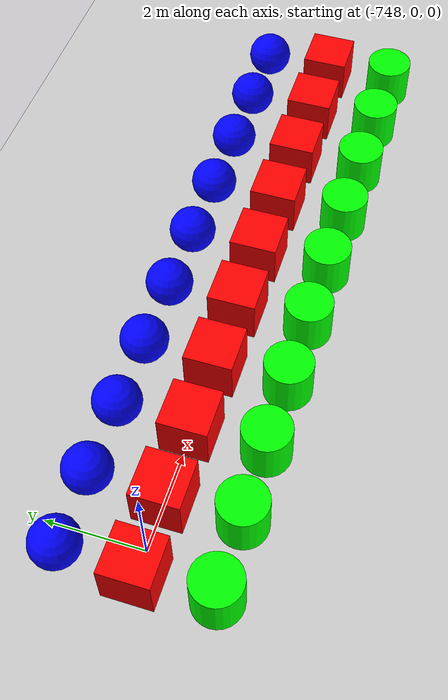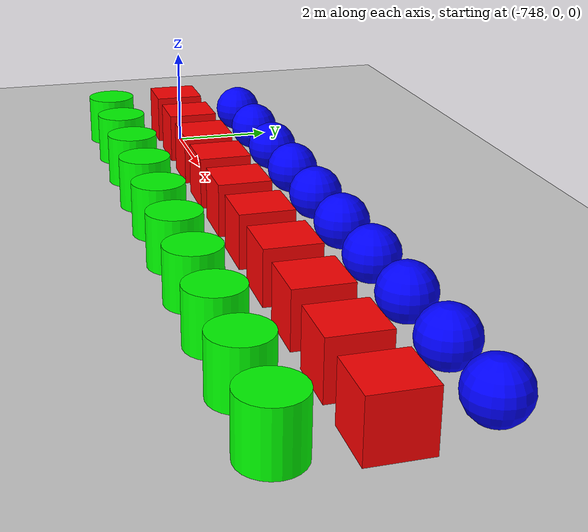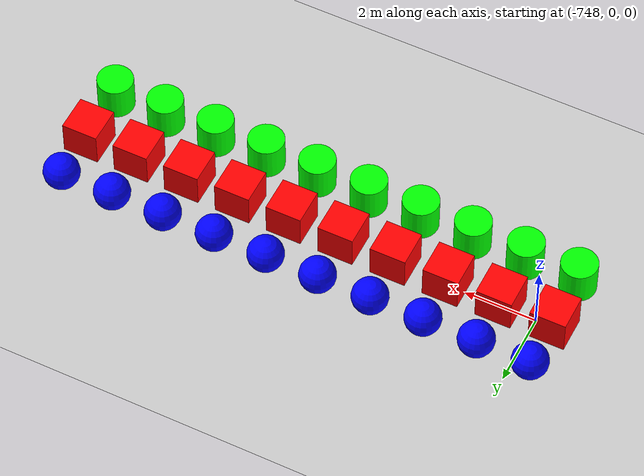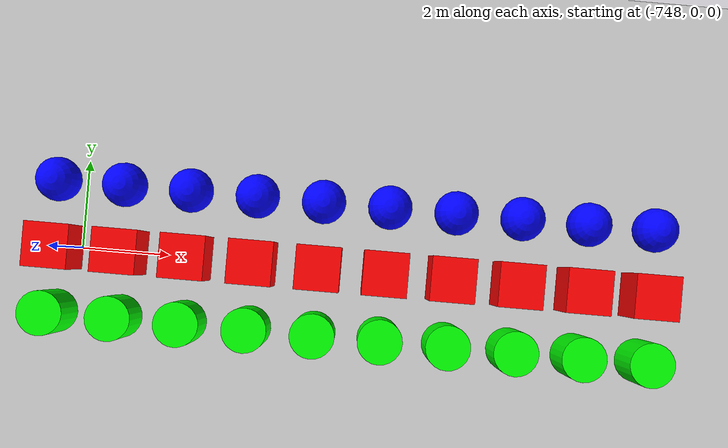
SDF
<?xml version="1.0" ?>
<sdf version="1.6">
  <world name="shapes">
    <model name="ground_plane">
      <static>true</static>
      <link name="link">
        <collision name="collision">
          <geometry>
            <plane>
              <normal>0 0 1</normal>
              <size>100 100</size>
            </plane>
          </geometry>
        </collision>
        <visual name="visual">
          <geometry>
            <plane>
              <normal>0 0 1</normal>
              <size>100 100</size>
            </plane>
          </geometry>
          <material>
            <ambient>0.8 0.8 0.8 1</ambient>
            <diffuse>0.8 0.8 0.8 1</diffuse>
            <specular>0.8 0.8 0.8 1</specular>
          </material>
        </visual>
      </link>
    </model>

    <model name="box_1">
      <static>false</static>
      <pose>-748.5 0 0.5 0 0 0</pose>
      <link name="box_link">
        <inertial>
          <inertia>
            <ixx>1</ixx>
            <ixy>0</ixy>
            <ixz>0</ixz>
            <iyy>1</iyy>
            <iyz>0</iyz>
            <izz>1</izz>
          </inertia>
          <mass>1.0</mass>
        </inertial>
        <collision name="box_collision">
          <geometry>
            <box>
              <size>1 1 1</size>
            </box>
          </geometry>
        </collision>

        <visual name="box_visual">
          <geometry>
            <box>
              <size>1 1 1</size>
            </box>
          </geometry>
          <material>
            <ambient>1 0 0 1</ambient>
            <diffuse>1 0 0 1</diffuse>
            <specular>1 0 0 1</specular>
          </material>
        </visual>
      </link>
    </model>

    <model name="cylinder_1">
      <static>false</static>
      <pose>-748.5 -1.5 0.5 0 0 0</pose>
      <link name="cylinder_link">
        <inertial>
          <inertia>
            <ixx>2</ixx>
            <ixy>0</ixy>
            <ixz>0</ixz>
            <iyy>2</iyy>
            <iyz>0</iyz>
            <izz>2</izz>
          </inertia>
          <mass>2.0</mass>
        </inertial>
        <collision name="cylinder_collision">
          <geometry>
            <cylinder>
              <radius>0.5</radius>
              <length>1.0</length>
            </cylinder>
          </geometry>
        </collision>

        <visual name="cylinder_visual">
          <geometry>
            <cylinder>
              <radius>0.5</radius>
              <length>1.0</length>
            </cylinder>
          </geometry>
          <material>
            <ambient>0 1 0 1</ambient>
            <diffuse>0 1 0 1</diffuse>
            <specular>0 1 0 1</specular>
          </material>
        </visual>
      </link>
    </model>

    <model name="sphere_1">
      <static>false</static>
      <pose>-748.5 1.5 0.5 0 0 0</pose>
      <link name="sphere_link">
        <inertial>
          <inertia>
            <ixx>3</ixx>
            <ixy>0</ixy>
            <ixz>0</ixz>
            <iyy>3</iyy>
            <iyz>0</iyz>
            <izz>3</izz>
          </inertia>
          <mass>3.0</mass>
        </inertial>
        <collision name="sphere_collision">
          <geometry>
            <sphere>
              <radius>0.5</radius>
            </sphere>
          </geometry>
        </collision>

        <visual name="sphere_visual">
          <geometry>
            <sphere>
              <radius>0.5</radius>
            </sphere>
          </geometry>
          <material>
            <ambient>0 0 1 1</ambient>
            <diffuse>0 0 1 1</diffuse>
            <specular>0 0 1 1</specular>
          </material>
        </visual>
      </link>
    </model>

    <model name="box_2">
      <static>false</static>
      <pose>-747.0 0 0.5 0 0 0</pose>
      <link name="box_link">
        <inertial>
          <inertia>
            <ixx>1</ixx>
            <ixy>0</ixy>
            <ixz>0</ixz>
            <iyy>1</iyy>
            <iyz>0</iyz>
            <izz>1</izz>
          </inertia>
          <mass>1.0</mass>
        </inertial>
        <collision name="box_collision">
          <geometry>
            <box>
              <size>1 1 1</size>
            </box>
          </geometry>
        </collision>

        <visual name="box_visual">
          <geometry>
            <box>
              <size>1 1 1</size>
            </box>
          </geometry>
          <material>
            <ambient>1 0 0 1</ambient>
            <diffuse>1 0 0 1</diffuse>
            <specular>1 0 0 1</specular>
          </material>
        </visual>
      </link>
    </model>

    <model name="cylinder_2">
      <static>false</static>
      <pose>-747.0 -1.5 0.5 0 0 0</pose>
      <link name="cylinder_link">
        <inertial>
          <inertia>
            <ixx>2</ixx>
            <ixy>0</ixy>
            <ixz>0</ixz>
            <iyy>2</iyy>
            <iyz>0</iyz>
            <izz>2</izz>
          </inertia>
          <mass>2.0</mass>
        </inertial>
        <collision name="cylinder_collision">
          <geometry>
            <cylinder>
              <radius>0.5</radius>
              <length>1.0</length>
            </cylinder>
          </geometry>
        </collision>

        <visual name="cylinder_visual">
          <geometry>
            <cylinder>
              <radius>0.5</radius>
              <length>1.0</length>
            </cylinder>
          </geometry>
          <material>
            <ambient>0 1 0 1</ambient>
            <diffuse>0 1 0 1</diffuse>
            <specular>0 1 0 1</specular>
          </material>
        </visual>
      </link>
    </model>

    <model name="sphere_2">
      <static>false</static>
      <pose>-747.0 1.5 0.5 0 0 0</pose>
      <link name="sphere_link">
        <inertial>
          <inertia>
            <ixx>3</ixx>
            <ixy>0</ixy>
            <ixz>0</ixz>
            <iyy>3</iyy>
            <iyz>0</iyz>
            <izz>3</izz>
          </inertia>
          <mass>3.0</mass>
        </inertial>
        <collision name="sphere_collision">
          <geometry>
            <sphere>
              <radius>0.5</radius>
            </sphere>
          </geometry>
        </collision>

        <visual name="sphere_visual">
          <geometry>
            <sphere>
              <radius>0.5</radius>
            </sphere>
          </geometry>
          <material>
            <ambient>0 0 1 1</ambient>
            <diffuse>0 0 1 1</diffuse>
            <specular>0 0 1 1</specular>
          </material>
        </visual>
      </link>
    </model>

    <model name="box_3">
      <static>false</static>
      <pose>-745.5 0 0.5 0 0 0</pose>
      <link name="box_link">
        <inertial>
          <inertia>
            <ixx>1</ixx>
            <ixy>0</ixy>
            <ixz>0</ixz>
            <iyy>1</iyy>
            <iyz>0</iyz>
            <izz>1</izz>
          </inertia>
          <mass>1.0</mass>
        </inertial>
        <collision name="box_collision">
          <geometry>
            <box>
              <size>1 1 1</size>
            </box>
          </geometry>
        </collision>

        <visual name="box_visual">
          <geometry>
            <box>
              <size>1 1 1</size>
            </box>
          </geometry>
          <material>
            <ambient>1 0 0 1</ambient>
            <diffuse>1 0 0 1</diffuse>
            <specular>1 0 0 1</specular>
          </material>
        </visual>
      </link>
    </model>

    <model name="cylinder_3">
      <static>false</static>
      <pose>-745.5 -1.5 0.5 0 0 0</pose>
      <link name="cylinder_link">
        <inertial>
          <inertia>
            <ixx>2</ixx>
            <ixy>0</ixy>
            <ixz>0</ixz>
            <iyy>2</iyy>
            <iyz>0</iyz>
            <izz>2</izz>
          </inertia>
          <mass>2.0</mass>
        </inertial>
        <collision name="cylinder_collision">
          <geometry>
            <cylinder>
              <radius>0.5</radius>
              <length>1.0</length>
            </cylinder>
          </geometry>
        </collision>

        <visual name="cylinder_visual">
          <geometry>
            <cylinder>
              <radius>0.5</radius>
              <length>1.0</length>
            </cylinder>
          </geometry>
          <material>
            <ambient>0 1 0 1</ambient>
            <diffuse>0 1 0 1</diffuse>
            <specular>0 1 0 1</specular>
          </material>
        </visual>
      </link>
    </model>

    <model name="sphere_3">
      <static>false</static>
      <pose>-745.5 1.5 0.5 0 0 0</pose>
      <link name="sphere_link">
        <inertial>
          <inertia>
            <ixx>3</ixx>
            <ixy>0</ixy>
            <ixz>0</ixz>
            <iyy>3</iyy>
            <iyz>0</iyz>
            <izz>3</izz>
          </inertia>
          <mass>3.0</mass>
        </inertial>
        <collision name="sphere_collision">
          <geometry>
            <sphere>
              <radius>0.5</radius>
            </sphere>
          </geometry>
        </collision>

        <visual name="sphere_visual">
          <geometry>
            <sphere>
              <radius>0.5</radius>
            </sphere>
          </geometry>
          <material>
            <ambient>0 0 1 1</ambient>
            <diffuse>0 0 1 1</diffuse>
            <specular>0 0 1 1</specular>
          </material>
        </visual>
      </link>
    </model>

    <model name="box_4">
      <static>false</static>
      <pose>-744.0 0 0.5 0 0 0</pose>
      <link name="box_link">
        <inertial>
          <inertia>
            <ixx>1</ixx>
            <ixy>0</ixy>
            <ixz>0</ixz>
            <iyy>1</iyy>
            <iyz>0</iyz>
            <izz>1</izz>
          </inertia>
          <mass>1.0</mass>
        </inertial>
        <collision name="box_collision">
          <geometry>
            <box>
              <size>1 1 1</size>
            </box>
          </geometry>
        </collision>

        <visual name="box_visual">
          <geometry>
            <box>
              <size>1 1 1</size>
            </box>
          </geometry>
          <material>
            <ambient>1 0 0 1</ambient>
            <diffuse>1 0 0 1</diffuse>
            <specular>1 0 0 1</specular>
          </material>
        </visual>
      </link>
    </model>

    <model name="cylinder_4">
      <static>false</static>
      <pose>-744.0 -1.5 0.5 0 0 0</pose>
      <link name="cylinder_link">
        <inertial>
          <inertia>
            <ixx>2</ixx>
            <ixy>0</ixy>
            <ixz>0</ixz>
            <iyy>2</iyy>
            <iyz>0</iyz>
            <izz>2</izz>
          </inertia>
          <mass>2.0</mass>
        </inertial>
        <collision name="cylinder_collision">
          <geometry>
            <cylinder>
              <radius>0.5</radius>
              <length>1.0</length>
            </cylinder>
          </geometry>
        </collision>

        <visual name="cylinder_visual">
          <geometry>
            <cylinder>
              <radius>0.5</radius>
              <length>1.0</length>
            </cylinder>
          </geometry>
          <material>
            <ambient>0 1 0 1</ambient>
            <diffuse>0 1 0 1</diffuse>
            <specular>0 1 0 1</specular>
          </material>
        </visual>
      </link>
    </model>

    <model name="sphere_4">
      <static>false</static>
      <pose>-744.0 1.5 0.5 0 0 0</pose>
      <link name="sphere_link">
        <inertial>
          <inertia>
            <ixx>3</ixx>
            <ixy>0</ixy>
            <ixz>0</ixz>
            <iyy>3</iyy>
            <iyz>0</iyz>
            <izz>3</izz>
          </inertia>
          <mass>3.0</mass>
        </inertial>
        <collision name="sphere_collision">
          <geometry>
            <sphere>
              <radius>0.5</radius>
            </sphere>
          </geometry>
        </collision>

        <visual name="sphere_visual">
          <geometry>
            <sphere>
              <radius>0.5</radius>
            </sphere>
          </geometry>
          <material>
            <ambient>0 0 1 1</ambient>
            <diffuse>0 0 1 1</diffuse>
            <specular>0 0 1 1</specular>
          </material>
        </visual>
      </link>
    </model>

    <model name="box_5">
      <static>false</static>
      <pose>-742.5 0 0.5 0 0 0</pose>
      <link name="box_link">
        <inertial>
          <inertia>
            <ixx>1</ixx>
            <ixy>0</ixy>
            <ixz>0</ixz>
            <iyy>1</iyy>
            <iyz>0</iyz>
            <izz>1</izz>
          </inertia>
          <mass>1.0</mass>
        </inertial>
        <collision name="box_collision">
          <geometry>
            <box>
              <size>1 1 1</size>
            </box>
          </geometry>
        </collision>

        <visual name="box_visual">
          <geometry>
            <box>
              <size>1 1 1</size>
            </box>
          </geometry>
          <material>
            <ambient>1 0 0 1</ambient>
            <diffuse>1 0 0 1</diffuse>
            <specular>1 0 0 1</specular>
          </material>
        </visual>
      </link>
    </model>

    <model name="cylinder_5">
      <static>false</static>
      <pose>-742.5 -1.5 0.5 0 0 0</pose>
      <link name="cylinder_link">
        <inertial>
          <inertia>
            <ixx>2</ixx>
            <ixy>0</ixy>
            <ixz>0</ixz>
            <iyy>2</iyy>
            <iyz>0</iyz>
            <izz>2</izz>
          </inertia>
          <mass>2.0</mass>
        </inertial>
        <collision name="cylinder_collision">
          <geometry>
            <cylinder>
              <radius>0.5</radius>
              <length>1.0</length>
            </cylinder>
          </geometry>
        </collision>

        <visual name="cylinder_visual">
          <geometry>
            <cylinder>
              <radius>0.5</radius>
              <length>1.0</length>
            </cylinder>
          </geometry>
          <material>
            <ambient>0 1 0 1</ambient>
            <diffuse>0 1 0 1</diffuse>
            <specular>0 1 0 1</specular>
          </material>
        </visual>
      </link>
    </model>

    <model name="sphere_5">
      <static>false</static>
      <pose>-742.5 1.5 0.5 0 0 0</pose>
      <link name="sphere_link">
        <inertial>
          <inertia>
            <ixx>3</ixx>
            <ixy>0</ixy>
            <ixz>0</ixz>
            <iyy>3</iyy>
            <iyz>0</iyz>
            <izz>3</izz>
          </inertia>
          <mass>3.0</mass>
        </inertial>
        <collision name="sphere_collision">
          <geometry>
            <sphere>
              <radius>0.5</radius>
            </sphere>
          </geometry>
        </collision>

        <visual name="sphere_visual">
          <geometry>
            <sphere>
              <radius>0.5</radius>
            </sphere>
          </geometry>
          <material>
            <ambient>0 0 1 1</ambient>
            <diffuse>0 0 1 1</diffuse>
            <specular>0 0 1 1</specular>
          </material>
        </visual>
      </link>
    </model>

    <model name="box_6">
      <static>false</static>
      <pose>-741.0 0 0.5 0 0 0</pose>
      <link name="box_link">
        <inertial>
          <inertia>
            <ixx>1</ixx>
            <ixy>0</ixy>
            <ixz>0</ixz>
            <iyy>1</iyy>
            <iyz>0</iyz>
            <izz>1</izz>
          </inertia>
          <mass>1.0</mass>
        </inertial>
        <collision name="box_collision">
          <geometry>
            <box>
              <size>1 1 1</size>
            </box>
          </geometry>
        </collision>

        <visual name="box_visual">
          <geometry>
            <box>
              <size>1 1 1</size>
            </box>
          </geometry>
          <material>
            <ambient>1 0 0 1</ambient>
            <diffuse>1 0 0 1</diffuse>
            <specular>1 0 0 1</specular>
          </material>
        </visual>
      </link>
    </model>

    <model name="cylinder_6">
      <static>false</static>
      <pose>-741.0 -1.5 0.5 0 0 0</pose>
      <link name="cylinder_link">
        <inertial>
          <inertia>
            <ixx>2</ixx>
            <ixy>0</ixy>
            <ixz>0</ixz>
            <iyy>2</iyy>
            <iyz>0</iyz>
            <izz>2</izz>
          </inertia>
          <mass>2.0</mass>
        </inertial>
        <collision name="cylinder_collision">
          <geometry>
            <cylinder>
              <radius>0.5</radius>
              <length>1.0</length>
            </cylinder>
          </geometry>
        </collision>

        <visual name="cylinder_visual">
          <geometry>
            <cylinder>
              <radius>0.5</radius>
              <length>1.0</length>
            </cylinder>
          </geometry>
          <material>
            <ambient>0 1 0 1</ambient>
            <diffuse>0 1 0 1</diffuse>
            <specular>0 1 0 1</specular>
          </material>
        </visual>
      </link>
    </model>

    <model name="sphere_6">
      <static>false</static>
      <pose>-741.0 1.5 0.5 0 0 0</pose>
      <link name="sphere_link">
        <inertial>
          <inertia>
            <ixx>3</ixx>
            <ixy>0</ixy>
            <ixz>0</ixz>
            <iyy>3</iyy>
            <iyz>0</iyz>
            <izz>3</izz>
          </inertia>
          <mass>3.0</mass>
        </inertial>
        <collision name="sphere_collision">
          <geometry>
            <sphere>
              <radius>0.5</radius>
            </sphere>
          </geometry>
        </collision>

        <visual name="sphere_visual">
          <geometry>
            <sphere>
              <radius>0.5</radius>
            </sphere>
          </geometry>
          <material>
            <ambient>0 0 1 1</ambient>
            <diffuse>0 0 1 1</diffuse>
            <specular>0 0 1 1</specular>
          </material>
        </visual>
      </link>
    </model>

    <model name="box_7">
      <static>false</static>
      <pose>-739.5 0 0.5 0 0 0</pose>
      <link name="box_link">
        <inertial>
          <inertia>
            <ixx>1</ixx>
            <ixy>0</ixy>
            <ixz>0</ixz>
            <iyy>1</iyy>
            <iyz>0</iyz>
            <izz>1</izz>
          </inertia>
          <mass>1.0</mass>
        </inertial>
        <collision name="box_collision">
          <geometry>
            <box>
              <size>1 1 1</size>
            </box>
          </geometry>
        </collision>

        <visual name="box_visual">
          <geometry>
            <box>
              <size>1 1 1</size>
            </box>
          </geometry>
          <material>
            <ambient>1 0 0 1</ambient>
            <diffuse>1 0 0 1</diffuse>
            <specular>1 0 0 1</specular>
          </material>
        </visual>
      </link>
    </model>

    <model name="cylinder_7">
      <static>false</static>
      <pose>-739.5 -1.5 0.5 0 0 0</pose>
      <link name="cylinder_link">
        <inertial>
          <inertia>
            <ixx>2</ixx>
            <ixy>0</ixy>
            <ixz>0</ixz>
            <iyy>2</iyy>
            <iyz>0</iyz>
            <izz>2</izz>
          </inertia>
          <mass>2.0</mass>
        </inertial>
        <collision name="cylinder_collision">
          <geometry>
            <cylinder>
              <radius>0.5</radius>
              <length>1.0</length>
            </cylinder>
          </geometry>
        </collision>

        <visual name="cylinder_visual">
          <geometry>
            <cylinder>
              <radius>0.5</radius>
              <length>1.0</length>
            </cylinder>
          </geometry>
          <material>
            <ambient>0 1 0 1</ambient>
            <diffuse>0 1 0 1</diffuse>
            <specular>0 1 0 1</specular>
          </material>
        </visual>
      </link>
    </model>

    <model name="sphere_7">
      <static>false</static>
      <pose>-739.5 1.5 0.5 0 0 0</pose>
      <link name="sphere_link">
        <inertial>
          <inertia>
            <ixx>3</ixx>
            <ixy>0</ixy>
            <ixz>0</ixz>
            <iyy>3</iyy>
            <iyz>0</iyz>
            <izz>3</izz>
          </inertia>
          <mass>3.0</mass>
        </inertial>
        <collision name="sphere_collision">
          <geometry>
            <sphere>
              <radius>0.5</radius>
            </sphere>
          </geometry>
        </collision>

        <visual name="sphere_visual">
          <geometry>
            <sphere>
              <radius>0.5</radius>
            </sphere>
          </geometry>
          <material>
            <ambient>0 0 1 1</ambient>
            <diffuse>0 0 1 1</diffuse>
            <specular>0 0 1 1</specular>
          </material>
        </visual>
      </link>
    </model>

    <model name="box_8">
      <static>false</static>
      <pose>-738.0 0 0.5 0 0 0</pose>
      <link name="box_link">
        <inertial>
          <inertia>
            <ixx>1</ixx>
            <ixy>0</ixy>
            <ixz>0</ixz>
            <iyy>1</iyy>
            <iyz>0</iyz>
            <izz>1</izz>
          </inertia>
          <mass>1.0</mass>
        </inertial>
        <collision name="box_collision">
          <geometry>
            <box>
              <size>1 1 1</size>
            </box>
          </geometry>
        </collision>

        <visual name="box_visual">
          <geometry>
            <box>
              <size>1 1 1</size>
            </box>
          </geometry>
          <material>
            <ambient>1 0 0 1</ambient>
            <diffuse>1 0 0 1</diffuse>
            <specular>1 0 0 1</specular>
          </material>
        </visual>
      </link>
    </model>

    <model name="cylinder_8">
      <static>false</static>
      <pose>-738.0 -1.5 0.5 0 0 0</pose>
      <link name="cylinder_link">
        <inertial>
          <inertia>
            <ixx>2</ixx>
            <ixy>0</ixy>
            <ixz>0</ixz>
            <iyy>2</iyy>
            <iyz>0</iyz>
            <izz>2</izz>
          </inertia>
          <mass>2.0</mass>
        </inertial>
        <collision name="cylinder_collision">
          <geometry>
            <cylinder>
              <radius>0.5</radius>
              <length>1.0</length>
            </cylinder>
          </geometry>
        </collision>

        <visual name="cylinder_visual">
          <geometry>
            <cylinder>
              <radius>0.5</radius>
              <length>1.0</length>
            </cylinder>
          </geometry>
          <material>
            <ambient>0 1 0 1</ambient>
            <diffuse>0 1 0 1</diffuse>
            <specular>0 1 0 1</specular>
          </material>
        </visual>
      </link>
    </model>

    <model name="sphere_8">
      <static>false</static>
      <pose>-738.0 1.5 0.5 0 0 0</pose>
      <link name="sphere_link">
        <inertial>
          <inertia>
            <ixx>3</ixx>
            <ixy>0</ixy>
            <ixz>0</ixz>
            <iyy>3</iyy>
            <iyz>0</iyz>
            <izz>3</izz>
          </inertia>
          <mass>3.0</mass>
        </inertial>
        <collision name="sphere_collision">
          <geometry>
            <sphere>
              <radius>0.5</radius>
            </sphere>
          </geometry>
        </collision>

        <visual name="sphere_visual">
          <geometry>
            <sphere>
              <radius>0.5</radius>
            </sphere>
          </geometry>
          <material>
            <ambient>0 0 1 1</ambient>
            <diffuse>0 0 1 1</diffuse>
            <specular>0 0 1 1</specular>
          </material>
        </visual>
      </link>
    </model>

    <model name="box_9">
      <static>false</static>
      <pose>-736.5 0 0.5 0 0 0</pose>
      <link name="box_link">
        <inertial>
          <inertia>
            <ixx>1</ixx>
            <ixy>0</ixy>
            <ixz>0</ixz>
            <iyy>1</iyy>
            <iyz>0</iyz>
            <izz>1</izz>
          </inertia>
          <mass>1.0</mass>
        </inertial>
        <collision name="box_collision">
          <geometry>
            <box>
              <size>1 1 1</size>
            </box>
          </geometry>
        </collision>

        <visual name="box_visual">
          <geometry>
            <box>
              <size>1 1 1</size>
            </box>
          </geometry>
          <material>
            <ambient>1 0 0 1</ambient>
            <diffuse>1 0 0 1</diffuse>
            <specular>1 0 0 1</specular>
          </material>
        </visual>
      </link>
    </model>

    <model name="cylinder_9">
      <static>false</static>
      <pose>-736.5 -1.5 0.5 0 0 0</pose>
      <link name="cylinder_link">
        <inertial>
          <inertia>
            <ixx>2</ixx>
            <ixy>0</ixy>
            <ixz>0</ixz>
            <iyy>2</iyy>
            <iyz>0</iyz>
            <izz>2</izz>
          </inertia>
          <mass>2.0</mass>
        </inertial>
        <collision name="cylinder_collision">
          <geometry>
            <cylinder>
              <radius>0.5</radius>
              <length>1.0</length>
            </cylinder>
          </geometry>
        </collision>

        <visual name="cylinder_visual">
          <geometry>
            <cylinder>
              <radius>0.5</radius>
              <length>1.0</length>
            </cylinder>
          </geometry>
          <material>
            <ambient>0 1 0 1</ambient>
            <diffuse>0 1 0 1</diffuse>
            <specular>0 1 0 1</specular>
          </material>
        </visual>
      </link>
    </model>

    <model name="sphere_9">
      <static>false</static>
      <pose>-736.5 1.5 0.5 0 0 0</pose>
      <link name="sphere_link">
        <inertial>
          <inertia>
            <ixx>3</ixx>
            <ixy>0</ixy>
            <ixz>0</ixz>
            <iyy>3</iyy>
            <iyz>0</iyz>
            <izz>3</izz>
          </inertia>
          <mass>3.0</mass>
        </inertial>
        <collision name="sphere_collision">
          <geometry>
            <sphere>
              <radius>0.5</radius>
            </sphere>
          </geometry>
        </collision>

        <visual name="sphere_visual">
          <geometry>
            <sphere>
              <radius>0.5</radius>
            </sphere>
          </geometry>
          <material>
            <ambient>0 0 1 1</ambient>
            <diffuse>0 0 1 1</diffuse>
            <specular>0 0 1 1</specular>
          </material>
        </visual>
      </link>
    </model>

    <model name="box_10">
      <static>false</static>
      <pose>-735.0 0 0.5 0 0 0</pose>
      <link name="box_link">
        <inertial>
          <inertia>
            <ixx>1</ixx>
            <ixy>0</ixy>
            <ixz>0</ixz>
            <iyy>1</iyy>
            <iyz>0</iyz>
            <izz>1</izz>
          </inertia>
          <mass>1.0</mass>
        </inertial>
        <collision name="box_collision">
          <geometry>
            <box>
              <size>1 1 1</size>
            </box>
          </geometry>
        </collision>

        <visual name="box_visual">
          <geometry>
            <box>
              <size>1 1 1</size>
            </box>
          </geometry>
          <material>
            <ambient>1 0 0 1</ambient>
            <diffuse>1 0 0 1</diffuse>
            <specular>1 0 0 1</specular>
          </material>
        </visual>
      </link>
    </model>

    <model name="cylinder_10">
      <static>false</static>
      <pose>-735.0 -1.5 0.5 0 0 0</pose>
      <link name="cylinder_link">
        <inertial>
          <inertia>
            <ixx>2</ixx>
            <ixy>0</ixy>
            <ixz>0</ixz>
            <iyy>2</iyy>
            <iyz>0</iyz>
            <izz>2</izz>
          </inertia>
          <mass>2.0</mass>
        </inertial>
        <collision name="cylinder_collision">
          <geometry>
            <cylinder>
              <radius>0.5</radius>
              <length>1.0</length>
            </cylinder>
          </geometry>
        </collision>

        <visual name="cylinder_visual">
          <geometry>
            <cylinder>
              <radius>0.5</radius>
              <length>1.0</length>
            </cylinder>
          </geometry>
          <material>
            <ambient>0 1 0 1</ambient>
            <diffuse>0 1 0 1</diffuse>
            <specular>0 1 0 1</specular>
          </material>
        </visual>
      </link>
    </model>

    <model name="sphere_10">
      <static>false</static>
      <pose>-735.0 1.5 0.5 0 0 0</pose>
      <link name="sphere_link">
        <inertial>
          <inertia>
            <ixx>3</ixx>
            <ixy>0</ixy>
            <ixz>0</ixz>
            <iyy>3</iyy>
            <iyz>0</iyz>
            <izz>3</izz>
          </inertia>
          <mass>3.0</mass>
        </inertial>
        <collision name="sphere_collision">
          <geometry>
            <sphere>
              <radius>0.5</radius>
            </sphere>
          </geometry>
        </collision>

        <visual name="sphere_visual">
          <geometry>
            <sphere>
              <radius>0.5</radius>
            </sphere>
          </geometry>
          <material>
            <ambient>0 0 1 1</ambient>
            <diffuse>0 0 1 1</diffuse>
            <specular>0 0 1 1</specular>
          </material>
        </visual>
      </link>
    </model>

  </world>
</sdf>
